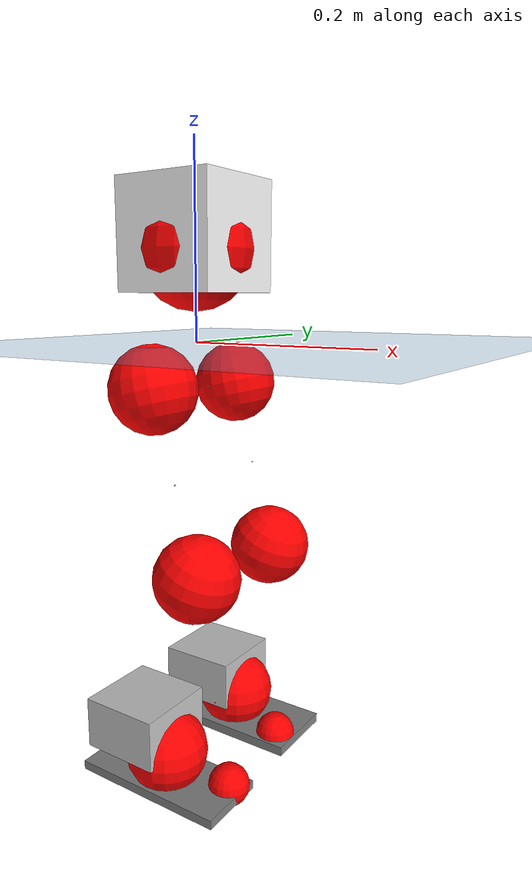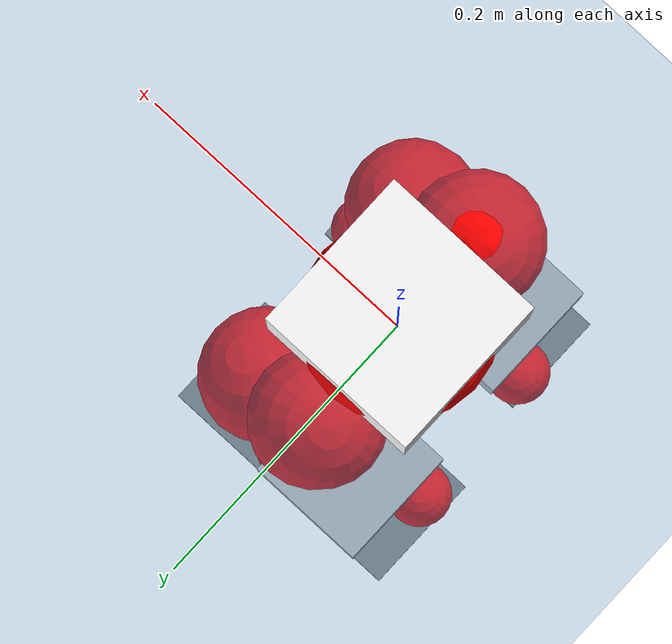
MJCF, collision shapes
<mujoco model="pi_12dof_release_v1">
  <compiler angle="radian" assetdir="assets" balanceinertia="true" inertiafromgeom="false"/>

  <option timestep="0.005" density="1.2" viscosity="2e-05"/>

  <size nkey="1"/>

  <visual>
    <quality shadowsize="8192"/>
    <map shadowclip="0.5"/>
  </visual>

  <default>
    <default class="/">
      <joint armature="0.01" damping="0.01" frictionloss="0.01"/>
      <geom contype="0" conaffinity="0" group="1" solref="-1000 -80"/>
      <site size="0.01 0.005 0.005" group="5"/>
      <general forcelimited="true" biastype="affine" gainprm="20" biasprm="0 -20 -0.5"/>
      <default class="foot">
        <geom size="0.0845 0.036 0.005" type="box" condim="6" group="4" priority="1" friction="0.9 0.2 0.2" solimp="0.015 1 0.005"/>
      </default>
      <default class="reward_collision_sphere">
        <geom group="5" rgba="1 0 0 1"/>
      </default>
    </default>
  </default>

  <asset>
    <texture type="skybox" colorspace="auto" name="//unnamed_texture_0" builtin="gradient" rgb1="0.95 0.95 0.95" rgb2="0.95 0.95 0.95" width="100" height="600"/>
    <texture type="2d" colorspace="auto" name="texplane" builtin="checker" rgb1="0.345 0.575 0.748" rgb2="0.345 0.575 0.748" markrgb="1 1 1" width="512" height="512"/>
    <material name="MatPlane" class="/" texture="texplane" texuniform="true" texrepeat="2 2" specular="0.9"/>
    <mesh name="baselink_1" class="/" file="baselink_1.STL"/>
    <mesh name="r_hip_pitch_link" class="/" file="r_hip_pitch_link.STL"/>
    <mesh name="r_hip_roll_link" class="/" file="r_hip_roll_link.STL"/>
    <mesh name="r_thigh_link" class="/" file="r_thigh_link.STL"/>
    <mesh name="r_calf_link" class="/" file="r_calf_link.STL"/>
    <mesh name="r_ankle_pitch_link" class="/" file="r_ankle_pitch_link.STL"/>
    <mesh name="r_ankle_roll_link" class="/" file="r_ankle_roll_link.STL"/>
    <mesh name="l_hip_pitch_link" class="/" file="l_hip_pitch_link.STL"/>
    <mesh name="l_hip_roll_link" class="/" file="l_hip_roll_link.STL"/>
    <mesh name="l_thigh_link" class="/" file="l_thigh_link.STL"/>
    <mesh name="l_calf_link" class="/" file="l_calf_link.STL"/>
    <mesh name="l_ankle_pitch_link" class="/" file="l_ankle_pitch_link.STL"/>
    <mesh name="l_ankle_roll_link" class="/" file="l_ankle_roll_link.STL"/>
  </asset>

  <worldbody>
    <geom name="floor" class="/" size="100 100 0.125" type="plane" group="0" material="MatPlane"/>
    <light name="toplight_shadow" class="/" pos="0 0 5" dir="0.0990148 0.0990148 -0.990148" type="directional" ambient="0.04 0.04 0.04" diffuse="0.55 0.55 0.55" specular="0.12 0.12 0.12"/>
    <light name="toplight_fill" class="/" pos="0 0 5" dir="0.0990148 0.0990148 -0.990148" type="directional" castshadow="false" ambient="0.04 0.04 0.04" diffuse="0.3 0.3 0.3" specular="0.08 0.08 0.08"/>
    <body name="trunk" pos="-0.00115903 0.000673482 -0.00277885" quat="1 9.89402e-06 -3.13349e-05 -2.63002e-05">
      <inertial pos="0.00313918 0.00238232 0.0539832" quat="0.699153 0.00803721 0.0110276 0.714842" mass="3.10018" diaginertia="0.0130332 0.00624925 0.0200201"/>
      <joint name="//unnamed_joint_0" type="free"/>
      <geom name="//unnamed_geom_1" class="/" type="mesh" density="0" rgba="1 1 1 1" mesh="baselink_1"/>
      <geom name="//unnamed_geom_2" class="/" size="0.0554351 0.0554351 0.0554351" pos="0 0 0.108093" type="box" rgba="1 1 1 1"/>
      <geom name="//unnamed_geom_3" class="reward_collision_sphere" size="0.0609787" pos="0 0 0.0945815"/>
      <site name="imu" class="/" pos="0.0024373 0.0131885 0.00112741" size="0.011087"/>
      <camera name="track" class="/" pos="0 -1.84555 0" quat="0.707107 0.707107 0 0" mode="trackcom"/>
      <camera name="ego_camera" class="/" pos="0.0789127 0 0.243209" quat="-0.5 -0.5 0.5 0.5"/>
      <body name="r_hip_pitch_link" pos="0.000661928 -0.0226836 -0.0419706" quat="0.992193 -0.00128949 -0.124702 -0.000591418">
        <inertial pos="0.00286888 -0.0530516 -0.000167456" quat="-0.0191907 0.705888 -0.0274096 0.707532" mass="0.496785" diaginertia="0.000140661 6.92282e-05 0.000375007"/>
        <joint name="r_hip_pitch_joint" class="/" pos="0 0 0" axis="-0.00952922 -0.999896 -0.010863" range="-1.80474 1.26174" armature="0.00973492" damping="0.0168493" frictionloss="0.0120382"/>
        <geom name="//unnamed_geom_4" class="/" type="mesh" density="0" rgba="0.75294 0.75294 0.75294 1" mesh="r_hip_pitch_link"/>
        <geom name="//unnamed_geom_5" class="/" size="0.000554351 0.000554351 0.000554351" type="box" rgba="0.75294 0.75294 0.75294 1"/>
        <body name="r_hip_roll_link" pos="0.00302323 -0.0511978 0.00199716" quat="1 0.000453013 -0.000174762 -2.14536e-05">
          <inertial pos="0.000193923 -0.00205558 -0.0822454" quat="0.70561 -0.0785017 -0.0827807 0.699356" mass="0.523012" diaginertia="0.000435907 0.000180554 0.000555081"/>
          <joint name="r_hip_roll_joint" class="/" pos="0 0 0" axis="-0.999968 0.00251224 0.00763522" range="-0.161148 0.460335" armature="0.00960384" damping="0.0118766" frictionloss="0.011643"/>
          <geom name="//unnamed_geom_6" class="/" type="mesh" density="0" rgba="0.75294 0.75294 0.75294 1" mesh="r_hip_roll_link"/>
          <geom name="//unnamed_geom_7" class="/" size="0.000554351 0.000554351 0.000554351" type="box" rgba="0.75294 0.75294 0.75294 1"/>
          <geom name="//unnamed_geom_8" class="reward_collision_sphere" size="0.0443481"/>
          <body name="r_thigh_link" pos="0.00144886 1.80348e-05 -0.0948452" quat="0.999999 0.000847996 -0.000499548 -0.000612491">
            <inertial pos="-0.00103301 0.00131797 -0.0620661" quat="0.745377 0.666611 -0.00174181 0.00630088" mass="0.153218" diaginertia="0.000153321 6.3966e-05 0.000263796"/>
            <joint name="r_thigh_joint" class="/" pos="0 0 0" axis="0.00438019 -0.0010332 -0.99999" range="-0.328418 0.643855" armature="0.00980666" damping="0.0135193" frictionloss="0.0117659"/>
            <geom name="//unnamed_geom_9" class="/" type="mesh" density="0" rgba="0.75294 0.75294 0.75294 1" mesh="r_thigh_link"/>
            <geom name="//unnamed_geom_10" class="/" size="0.000554351 0.000554351 0.000554351" type="box" rgba="0.75294 0.75294 0.75294 1"/>
            <body name="r_calf_link" pos="0.00173696 0.000257741 -0.0950328" quat="0.94769 0.00029759 0.319192 -0.000602339">
              <inertial pos="0.0022194 -0.00155345 -0.0937189" quat="0.999965 -0.000745052 0.0033016 0.00759436" mass="1.11045" diaginertia="0.00430356 0.0022681 0.000739204"/>
              <joint name="r_calf_joint" class="/" pos="0 0 0" axis="-0.00480044 -0.99998 -0.00418688" range="-1.66557 0.648146" armature="0.0105258" damping="0.0156573" frictionloss="0.0119616"/>
              <geom name="//unnamed_geom_11" class="/" type="mesh" density="0" rgba="0.75294 0.75294 0.75294 1" mesh="r_calf_link"/>
              <geom name="//unnamed_geom_12" class="/" size="0.000554351 0.000554351 0.000554351" type="box" rgba="0.75294 0.75294 0.75294 1"/>
              <geom name="//unnamed_geom_13" class="reward_collision_sphere" size="0.0443481"/>
              <body name="r_ankle_pitch_link" pos="0.00152388 0.000580573 -0.189707" quat="0.98013 0.000350759 -0.198355 2.76896e-05">
                <inertial pos="0.00760237 0.00171803 2.86419e-05" quat="0.000858137 0.701611 -0.0101198 0.712487" mass="0.238302" diaginertia="0.000384693 0.000138744 0.000527375"/>
                <joint name="r_ankle_pitch_joint" class="/" pos="0 0 0" axis="3.5514e-05 -0.999999 -0.00143881" range="-1.24138 0.492326" armature="0.0107262" damping="0" frictionloss="0.0125109"/>
                <geom name="//unnamed_geom_14" class="/" type="mesh" density="0" rgba="0.75294 0.75294 0.75294 1" mesh="r_ankle_pitch_link"/>
                <geom name="//unnamed_geom_15" class="/" size="0.0432394 0.0443481 0.0277176" type="box" rgba="0.75294 0.75294 0.75294 1"/>
                <body name="r_ankle_roll_link" pos="0.0807859 0.000768721 -0.0029376" quat="1 -3.90965e-05 -2.86132e-05 5.74527e-06">
                  <inertial pos="-0.0246998 -0.000690202 -0.0199376" quat="0.559958 0.43193 0.43291 0.558992" mass="0.7131" diaginertia="0.00145111 0.000688331 0.00124267"/>
                  <joint name="r_ankle_roll_joint" class="/" pos="0 0 0" axis="-0.999995 0.0028036 -0.00123102" stiffness="0.0086794" range="-0.150144 0.135018" armature="0.0111413" damping="0.00257503" frictionloss="0.0112289"/>
                  <geom name="//unnamed_geom_16" class="/" type="mesh" density="0" rgba="0.75294 0.75294 0.75294 1" mesh="r_ankle_roll_link"/>
                  <geom name="//unnamed_geom_17" class="/" type="mesh" rgba="0.75294 0.75294 0.75294 1" mesh="r_ankle_roll_link"/>
                  <geom name="right_foot" class="foot" size="0.0867707 0.0383624 0.00494079" pos="-0.0536606 0 -0.0594512"/>
                  <geom name="//unnamed_geom_19" class="reward_collision_sphere" size="0.0443481" pos="-0.0526084 0 -0.0270233"/>
                  <geom name="//unnamed_geom_20" class="reward_collision_sphere" size="0.0221741" pos="0.0157825 0.0184555 -0.0540465"/>
                  <geom name="//unnamed_geom_21" class="reward_collision_sphere" size="0.0221741" pos="-0.12626 0.0184555 -0.0540465"/>
                  <site name="right_foot" class="foot" pos="-0.0536606 0 -0.0594512" size="0.011087"/>
                </body>
              </body>
            </body>
          </body>
        </body>
      </body>
      <body name="l_hip_pitch_link" pos="2.63167e-05 0.0204942 -0.0456226" quat="0.992205 -0.000622893 -0.124618 -0.000166411">
        <inertial pos="0.00363692 0.0495652 -0.00204507" quat="-0.0328351 0.702701 0.0299317 0.710097" mass="0.539631" diaginertia="0.00016795 7.25549e-05 0.00046337"/>
        <joint name="l_hip_pitch_joint" class="/" pos="0 0 0" axis="-0.0033536 0.999992 -0.00231985" range="-1.19317 1.76316" armature="0.0110501" damping="0.0267562" frictionloss="0.0113592"/>
        <geom name="//unnamed_geom_22" class="/" type="mesh" density="0" rgba="0.75294 0.75294 0.75294 1" mesh="l_hip_pitch_link"/>
        <geom name="//unnamed_geom_23" class="/" size="0.000554351 0.000554351 0.000554351" type="box" rgba="0.75294 0.75294 0.75294 1"/>
        <body name="l_hip_roll_link" pos="0.000481124 0.0515123 0.000777284" quat="1 3.37556e-05 -6.24601e-05 -5.00966e-05">
          <inertial pos="-0.00120776 -0.000178075 -0.0812815" quat="0.69201 -0.0701084 -0.0851799 0.713408" mass="0.540425" diaginertia="0.000436092 0.000193045 0.000610916"/>
          <joint name="l_hip_roll_joint" class="/" pos="0 0 0" axis="-0.999884 0.00799271 -0.012954" stiffness="0.0121559" range="-0.506108 0.14421" armature="0.00957282" damping="0.00982787" frictionloss="0.00962922"/>
          <geom name="//unnamed_geom_24" class="/" type="mesh" density="0" rgba="0.75294 0.75294 0.75294 1" mesh="l_hip_roll_link"/>
          <geom name="//unnamed_geom_25" class="/" size="0.000554351 0.000554351 0.000554351" type="box" rgba="0.75294 0.75294 0.75294 1"/>
          <geom name="//unnamed_geom_26" class="reward_collision_sphere" size="0.0443481"/>
          <body name="l_thigh_link" pos="0.000684378 -4.79952e-05 -0.0928505" quat="1 0.000168832 -0.000658866 -0.000366035">
            <inertial pos="-0.0022149 -0.0021253 -0.064626" quat="0.668084 0.74403 0.00713664 0.00571297" mass="0.158328" diaginertia="0.00016085 6.4679e-05 0.00027239"/>
            <joint name="l_thigh_joint" class="/" pos="0 0 0" axis="0.0143557 0.00243284 -0.999894" stiffness="0.00983281" range="-0.617729 0.338158" armature="0.0124478" damping="0.00322306" frictionloss="0.0125798"/>
            <geom name="//unnamed_geom_27" class="/" type="mesh" density="0" rgba="0.75294 0.75294 0.75294 1" mesh="l_thigh_link"/>
            <geom name="//unnamed_geom_28" class="/" size="0.000554351 0.000554351 0.000554351" type="box" rgba="0.75294 0.75294 0.75294 1"/>
            <body name="l_calf_link" pos="0.00199175 -0.00256149 -0.0962429" quat="0.947662 6.21708e-05 0.319276 0.00020486">
              <inertial pos="-0.000270978 0.00481692 -0.0935023" quat="0.999944 0.00461928 0.00930735 0.00219107" mass="1.11268" diaginertia="0.00461322 0.0023848 0.000794756"/>
              <joint name="l_calf_joint" class="/" pos="0 0 0" axis="0.00375037 0.999934 -0.010814" range="-0.658993 1.60231" armature="0.0123035" damping="0.00519653" frictionloss="0.0106157"/>
              <geom name="//unnamed_geom_29" class="/" type="mesh" density="0" rgba="0.75294 0.75294 0.75294 1" mesh="l_calf_link"/>
              <geom name="//unnamed_geom_30" class="/" size="0.000554351 0.000554351 0.000554351" type="box" rgba="0.75294 0.75294 0.75294 1"/>
              <geom name="//unnamed_geom_31" class="reward_collision_sphere" size="0.0443481"/>
              <body name="l_ankle_pitch_link" pos="-0.00214585 0.00204146 -0.188123" quat="0.980105 0.000107649 -0.19848 -0.000158875">
                <inertial pos="0.00456984 -0.00059769 -3.5019e-05" quat="-0.00446024 0.706284 0.00188876 0.707912" mass="0.237081" diaginertia="0.000391584 0.000152293 0.000541284"/>
                <joint name="l_ankle_pitch_joint" class="/" pos="0 0 0" axis="0.00564432 0.99998 -0.00268938" range="-0.5045 1.29806" armature="0.0111013" damping="0" frictionloss="0.0126358"/>
                <geom name="//unnamed_geom_32" class="/" type="mesh" density="0" rgba="0.75294 0.75294 0.75294 1" mesh="l_ankle_pitch_link"/>
                <geom name="//unnamed_geom_33" class="/" size="0.0432394 0.0443481 0.0277176" type="box" rgba="0.75294 0.75294 0.75294 1"/>
                <body name="l_ankle_roll_link" pos="0.0800473 -0.000135775 0.00294492" quat="1 0.0001105 0.00014482 0.000239568">
                  <inertial pos="-0.027089 -0.000678581 -0.01839" quat="0.566788 0.429428 0.439216 0.549028" mass="0.708276" diaginertia="0.00149966 0.000677756 0.00128563"/>
                  <joint name="l_ankle_roll_joint" class="/" pos="0 0 0" axis="-0.999997 0.00110206 -0.00207596" range="-0.16308 0.209955" armature="0.00965731" damping="0.0176518" frictionloss="0.00955373"/>
                  <geom name="//unnamed_geom_34" class="/" type="mesh" density="0" rgba="0.75294 0.75294 0.75294 1" mesh="l_ankle_roll_link"/>
                  <geom name="//unnamed_geom_35" class="/" type="mesh" rgba="0.75294 0.75294 0.75294 1" mesh="l_ankle_roll_link"/>
                  <geom name="left_foot" class="foot" size="0.0921036 0.0430541 0.00533911" pos="-0.0536606 0 -0.0594512"/>
                  <geom name="//unnamed_geom_37" class="reward_collision_sphere" size="0.0443481" pos="-0.0526084 0 -0.0270233"/>
                  <geom name="//unnamed_geom_38" class="reward_collision_sphere" size="0.0221741" pos="0.0157825 -0.0184555 -0.0540465"/>
                  <geom name="//unnamed_geom_39" class="reward_collision_sphere" size="0.0221741" pos="-0.12626 -0.0184555 -0.0540465"/>
                  <site name="left_foot" class="foot" pos="-0.0536606 0 -0.0594512" size="0.011087"/>
                </body>
              </body>
            </body>
          </body>
        </body>
      </body>
    </body>
  </worldbody>

  <contact>
    <pair class="/" geom1="floor" geom2="right_foot" name="//unnamed_contact_1"/>
    <pair class="/" geom1="floor" geom2="left_foot" name="//unnamed_contact_0"/>
  </contact>

  <actuator>
    <general name="r_hip_pitch_joint" class="/" joint="r_hip_pitch_joint" forcerange="-24.0633 24.0633" gainprm="21.5945" biasprm="0 -21.5945 -0.597087"/>
    <general name="r_hip_roll_joint" class="/" joint="r_hip_roll_joint" forcerange="-25.4473 25.4473" gainprm="21.5945" biasprm="0 -21.5945 -0.597087"/>
    <general name="r_thigh_joint" class="/" joint="r_thigh_joint" forcerange="-22.6383 22.6383" gainprm="21.5945" biasprm="0 -21.5945 -0.597087"/>
    <general name="r_calf_joint" class="/" joint="r_calf_joint" forcerange="-22.4697 22.4697" gainprm="21.5945" biasprm="0 -21.5945 -0.597087"/>
    <general name="r_ankle_pitch_joint" class="/" joint="r_ankle_pitch_joint" forcerange="-24.3883 24.3883" gainprm="21.5945" biasprm="0 -21.5945 -0.597087"/>
    <general name="r_ankle_roll_joint" class="/" joint="r_ankle_roll_joint" forcerange="-23.1032 23.1032" gainprm="21.5945" biasprm="0 -21.5945 -0.597087"/>
    <general name="l_hip_pitch_joint" class="/" joint="l_hip_pitch_joint" forcerange="-23.6169 23.6169" gainprm="21.5945" biasprm="0 -21.5945 -0.597087"/>
    <general name="l_hip_roll_joint" class="/" joint="l_hip_roll_joint" forcerange="-20.9951 20.9951" gainprm="21.5945" biasprm="0 -21.5945 -0.597087"/>
    <general name="l_thigh_joint" class="/" joint="l_thigh_joint" forcerange="-23.068 23.068" gainprm="21.5945" biasprm="0 -21.5945 -0.597087"/>
    <general name="l_calf_joint" class="/" joint="l_calf_joint" forcerange="-24.0836 24.0836" gainprm="21.5945" biasprm="0 -21.5945 -0.597087"/>
    <general name="l_ankle_pitch_joint" class="/" joint="l_ankle_pitch_joint" forcerange="-25.6092 25.6092" gainprm="21.5945" biasprm="0 -21.5945 -0.597087"/>
    <general name="l_ankle_roll_joint" class="/" joint="l_ankle_roll_joint" forcerange="-23.7255 23.7255" gainprm="21.5945" biasprm="0 -21.5945 -0.597087"/>
  </actuator>

  <sensor>
    <gyro site="imu" name="imu_angular_velocity"/>
    <velocimeter site="imu" name="imu_linear_velocity"/>
    <framelinvel objtype="site" objname="left_foot" name="left_foot_global_linear_velocity"/>
    <framelinvel objtype="site" objname="right_foot" name="right_foot_global_linear_velocity"/>
  </sensor>

  <keyframe>
    <key name="home" qpos="0 0 0.291 1 0 0 0 0.4 0 0 -0.8 0.4 0 -0.4 0 0 0.8 -0.4 0"/>
  </keyframe>
</mujoco>
